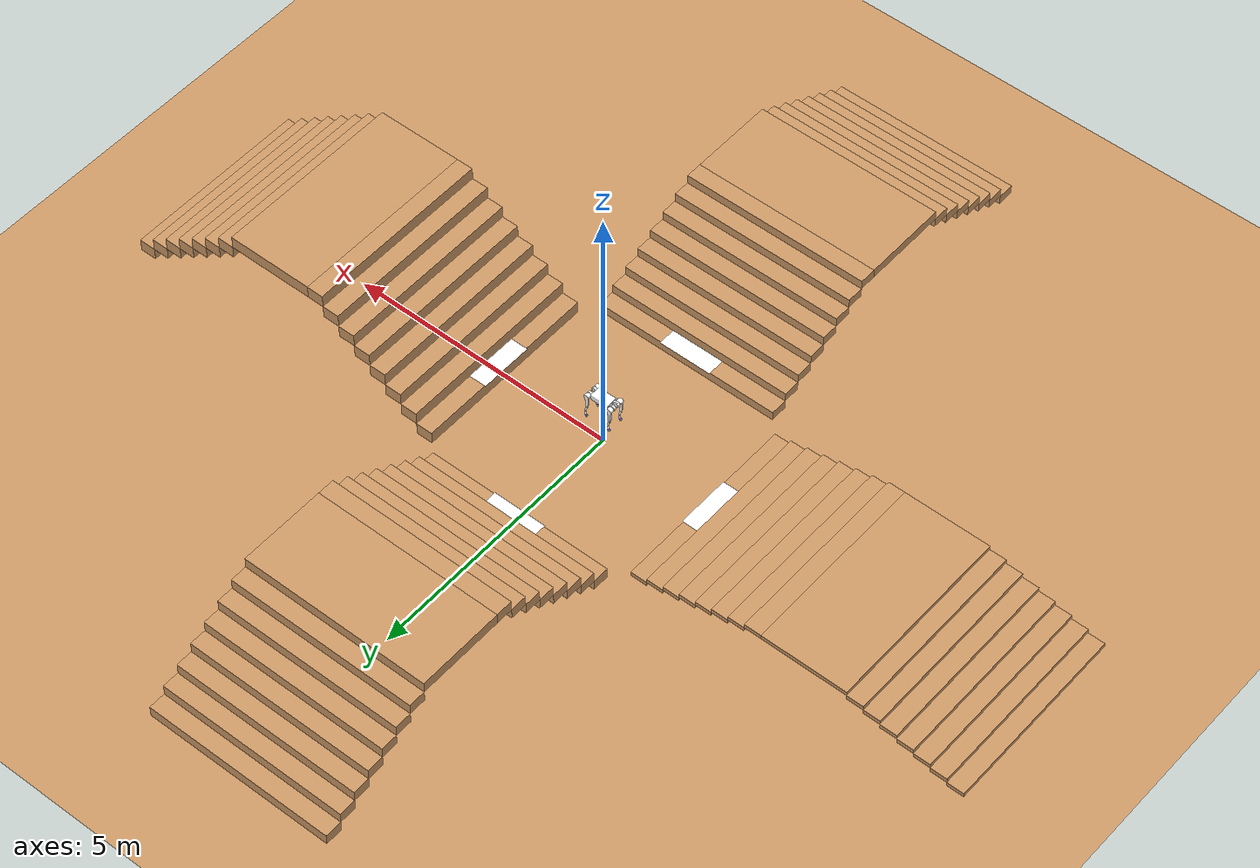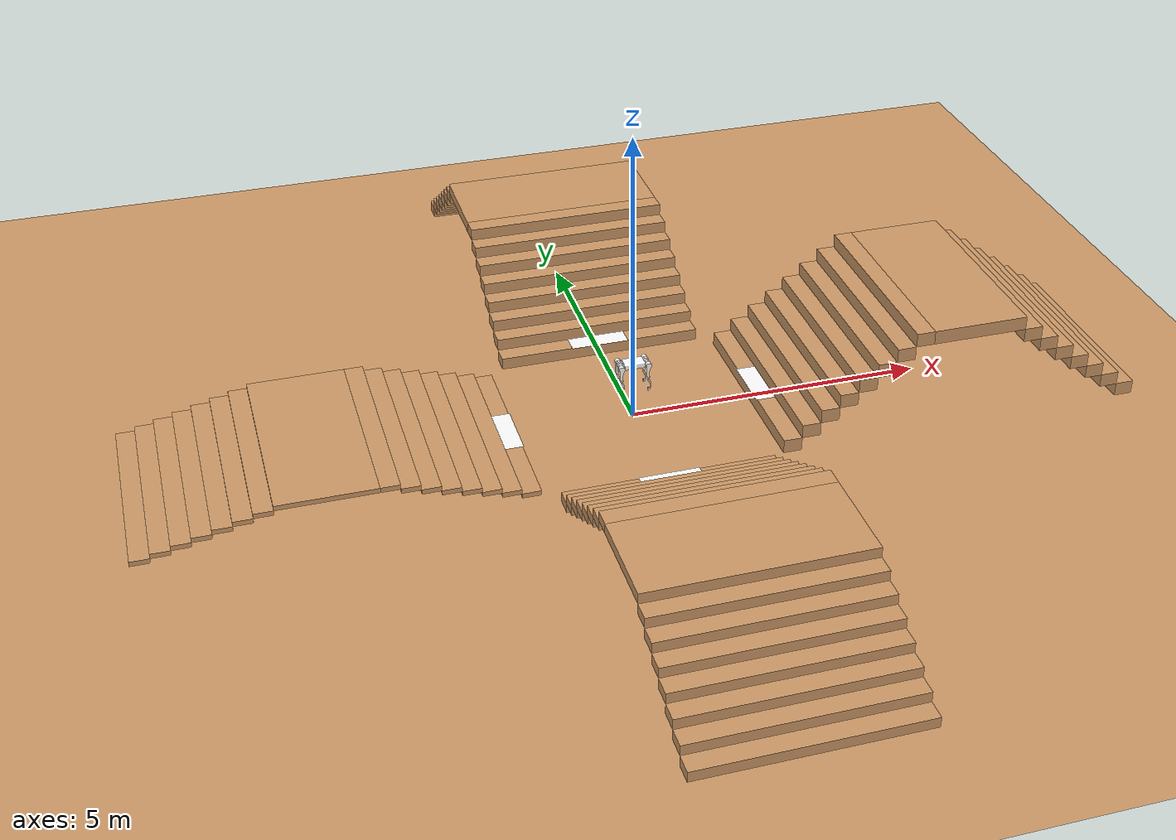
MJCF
<mujoco model="cross_stairs_1_4_7_10">
  <include file="mjmodel.xml"/>
  <!-- Terrain Type: cross_stairs, Level: 1_4_7_10, Cross Layout: Center Gap 2.0m. Arch step height: 0.0800 Arch step height: 0.2000 Arch step height: 0.2300 Arch step height: 0.1700 -->
  <statistic center="0 0 0.1" extent="0.8" />
  <visual>
    <headlight diffuse="0.6 0.6 0.6" ambient="0.3 0.3 0.3" specular="0 0 0" />
    <rgba haze="0.15 0.25 0.35 1" />
    <global azimuth="-130" elevation="-20" />
  </visual>
  <asset>
    <texture type="skybox" builtin="gradient" rgb1="0.3 0.5 0.7" rgb2="0 0 0" width="512" height="3072" />
    <texture type="2d" name="groundplane" builtin="checker" mark="edge" rgb1="0.2 0.3 0.4" rgb2="0.1 0.2 0.3" markrgb="0.8 0.8 0.8" width="300" height="300" />
    <material name="groundplane" texture="groundplane" texuniform="true" texrepeat="5 5" reflectance="0.0" />
    <texture name="tex_label_1" type="2d" file="../imgs/label_1.png" />
    <material name="mat_label_1" texture="tex_label_1" specular="0" shininess="0" emission="1" texrepeat="1 -1" rgba="1 1 1 1" />
    <texture name="tex_label_7" type="2d" file="../imgs/label_7.png" />
    <material name="mat_label_7" texture="tex_label_7" specular="0" shininess="0" emission="1" texrepeat="1 -1" rgba="1 1 1 1" />
    <texture name="tex_label_10" type="2d" file="../imgs/label_10.png" />
    <material name="mat_label_10" texture="tex_label_10" specular="0" shininess="0" emission="1" texrepeat="1 -1" rgba="1 1 1 1" />
    <texture name="tex_label_4" type="2d" file="../imgs/label_4.png" />
    <material name="mat_label_4" texture="tex_label_4" specular="0" shininess="0" emission="1" texrepeat="1 -1" rgba="1 1 1 1" />
  </asset>
  <worldbody>
    <light pos="0 0 1.5" dir="0 0 -1" directional="true" />
    <geom name="floor" size="0 0 0.05" type="plane" material="groundplane" />
    <geom pos="-2.155 1.8982025386783976e-17 0.04" type="box" size="0.155 1.75 0.04" quat="6.123233995736766e-17 0.0 0.0 1.0" />
    <geom pos="-2.465 5.694607616035192e-17 0.12" type="box" size="0.155 1.75 0.04" quat="6.123233995736766e-17 0.0 0.0 1.0" />
    <geom pos="-2.775 9.491012693391986e-17 0.2" type="box" size="0.155 1.75 0.04" quat="6.123233995736766e-17 0.0 0.0 1.0" />
    <geom pos="-3.085 1.328741777074878e-16 0.28" type="box" size="0.155 1.75 0.04" quat="6.123233995736766e-17 0.0 0.0 1.0" />
    <geom pos="-3.395 1.7083822848105578e-16 0.36000000000000004" type="box" size="0.155 1.75 0.04" quat="6.123233995736766e-17 0.0 0.0 1.0" />
    <geom pos="-3.705 2.0880227925462374e-16 0.44000000000000006" type="box" size="0.155 1.75 0.04" quat="6.123233995736766e-17 0.0 0.0 1.0" />
    <geom pos="-4.015000000000001 2.467663300281917e-16 0.52" type="box" size="0.155 1.75 0.04" quat="6.123233995736766e-17 0.0 0.0 1.0" />
    <geom pos="-4.325 2.8473038080175964e-16 0.6" type="box" size="0.155 1.75 0.04" quat="6.123233995736766e-17 0.0 0.0 1.0" />
    <geom pos="-5.28 4.016841501203319e-16 0.6" type="box" size="0.8 1.75 0.04" quat="6.123233995736766e-17 0.0 0.0 1.0" />
    <geom pos="-6.235 5.186379194389041e-16 0.52" type="box" size="0.155 1.75 0.04" quat="6.123233995736766e-17 0.0 0.0 1.0" />
    <geom pos="-6.545 5.56601970212472e-16 0.44" type="box" size="0.155 1.75 0.04" quat="6.123233995736766e-17 0.0 0.0 1.0" />
    <geom pos="-6.8549999999999995 5.945660209860399e-16 0.36" type="box" size="0.155 1.75 0.04" quat="6.123233995736766e-17 0.0 0.0 1.0" />
    <geom pos="-7.164999999999999 6.325300717596078e-16 0.27999999999999997" type="box" size="0.155 1.75 0.04" quat="6.123233995736766e-17 0.0 0.0 1.0" />
    <geom pos="-7.474999999999999 6.704941225331758e-16 0.19999999999999996" type="box" size="0.155 1.75 0.04" quat="6.123233995736766e-17 0.0 0.0 1.0" />
    <geom pos="-7.784999999999998 7.084581733067436e-16 0.11999999999999995" type="box" size="0.155 1.75 0.04" quat="6.123233995736766e-17 0.0 0.0 1.0" />
    <geom pos="-8.094999999999999 7.464222240803115e-16 0.03999999999999995" type="box" size="0.155 1.75 0.04" quat="6.123233995736766e-17 0.0 0.0 1.0" />
    <geom pos="-2.155 1.8982025386783976e-17 0.082" type="box" size="0.5 0.17532467532467533 0.0001" quat="0.7071067811865476 0.0 0.0 0.7071067811865476" contype="0" conaffinity="0" group="1" material="mat_label_1" rgba="1 1 1 1" />
    <geom pos="9.491012693391988e-18 2.155 0.1" type="box" size="0.155 1.75 0.1" quat="0.7071067811865476 0.0 0.0 0.7071067811865476" />
    <geom pos="2.847303808017596e-17 2.465 0.30000000000000004" type="box" size="0.155 1.75 0.1" quat="0.7071067811865476 0.0 0.0 0.7071067811865476" />
    <geom pos="4.745506346695993e-17 2.775 0.5" type="box" size="0.155 1.75 0.1" quat="0.7071067811865476 0.0 0.0 0.7071067811865476" />
    <geom pos="6.64370888537439e-17 3.085 0.7" type="box" size="0.155 1.75 0.1" quat="0.7071067811865476 0.0 0.0 0.7071067811865476" />
    <geom pos="8.541911424052789e-17 3.395 0.8999999999999999" type="box" size="0.155 1.75 0.1" quat="0.7071067811865476 0.0 0.0 0.7071067811865476" />
    <geom pos="1.0440113962731187e-16 3.705 1.0999999999999999" type="box" size="0.155 1.75 0.1" quat="0.7071067811865476 0.0 0.0 0.7071067811865476" />
    <geom pos="1.2338316501409585e-16 4.015000000000001 1.2999999999999998" type="box" size="0.155 1.75 0.1" quat="0.7071067811865476 0.0 0.0 0.7071067811865476" />
    <geom pos="1.4236519040087982e-16 4.325 1.4999999999999998" type="box" size="0.155 1.75 0.1" quat="0.7071067811865476 0.0 0.0 0.7071067811865476" />
    <geom pos="2.0084207506016595e-16 5.28 1.4999999999999998" type="box" size="0.8 1.75 0.1" quat="0.7071067811865476 0.0 0.0 0.7071067811865476" />
    <geom pos="2.5931895971945205e-16 6.235 1.2999999999999998" type="box" size="0.155 1.75 0.1" quat="0.7071067811865476 0.0 0.0 0.7071067811865476" />
    <geom pos="2.78300985106236e-16 6.545 1.0999999999999999" type="box" size="0.155 1.75 0.1" quat="0.7071067811865476 0.0 0.0 0.7071067811865476" />
    <geom pos="2.9728301049301994e-16 6.8549999999999995 0.8999999999999999" type="box" size="0.155 1.75 0.1" quat="0.7071067811865476 0.0 0.0 0.7071067811865476" />
    <geom pos="3.162650358798039e-16 7.164999999999999 0.7" type="box" size="0.155 1.75 0.1" quat="0.7071067811865476 0.0 0.0 0.7071067811865476" />
    <geom pos="3.352470612665879e-16 7.474999999999999 0.49999999999999994" type="box" size="0.155 1.75 0.1" quat="0.7071067811865476 0.0 0.0 0.7071067811865476" />
    <geom pos="3.542290866533718e-16 7.784999999999998 0.29999999999999993" type="box" size="0.155 1.75 0.1" quat="0.7071067811865476 0.0 0.0 0.7071067811865476" />
    <geom pos="3.7321111204015577e-16 8.094999999999999 0.09999999999999992" type="box" size="0.155 1.75 0.1" quat="0.7071067811865476 0.0 0.0 0.7071067811865476" />
    <geom pos="9.491012693391988e-18 2.155 0.202" type="box" size="0.5 0.17532467532467533 0.0001" quat="1.0 0.0 0.0 0.0" contype="0" conaffinity="0" group="1" material="mat_label_7" rgba="1 1 1 1" />
    <geom pos="2.155 0.0 0.115" type="box" size="0.155 1.75 0.115" quat="1.0 0.0 0.0 0.0" />
    <geom pos="2.465 0.0 0.34500000000000003" type="box" size="0.155 1.75 0.115" quat="1.0 0.0 0.0 0.0" />
    <geom pos="2.775 0.0 0.5750000000000001" type="box" size="0.155 1.75 0.115" quat="1.0 0.0 0.0 0.0" />
    <geom pos="3.085 0.0 0.805" type="box" size="0.155 1.75 0.115" quat="1.0 0.0 0.0 0.0" />
    <geom pos="3.395 0.0 1.0350000000000001" type="box" size="0.155 1.75 0.115" quat="1.0 0.0 0.0 0.0" />
    <geom pos="3.705 0.0 1.2650000000000001" type="box" size="0.155 1.75 0.115" quat="1.0 0.0 0.0 0.0" />
    <geom pos="4.015000000000001 0.0 1.495" type="box" size="0.155 1.75 0.115" quat="1.0 0.0 0.0 0.0" />
    <geom pos="4.325 0.0 1.725" type="box" size="0.155 1.75 0.115" quat="1.0 0.0 0.0 0.0" />
    <geom pos="5.28 0.0 1.725" type="box" size="0.8 1.75 0.115" quat="1.0 0.0 0.0 0.0" />
    <geom pos="6.235 0.0 1.495" type="box" size="0.155 1.75 0.115" quat="1.0 0.0 0.0 0.0" />
    <geom pos="6.545 0.0 1.2650000000000001" type="box" size="0.155 1.75 0.115" quat="1.0 0.0 0.0 0.0" />
    <geom pos="6.8549999999999995 0.0 1.0350000000000001" type="box" size="0.155 1.75 0.115" quat="1.0 0.0 0.0 0.0" />
    <geom pos="7.164999999999999 0.0 0.8050000000000002" type="box" size="0.155 1.75 0.115" quat="1.0 0.0 0.0 0.0" />
    <geom pos="7.474999999999999 0.0 0.5750000000000002" type="box" size="0.155 1.75 0.115" quat="1.0 0.0 0.0 0.0" />
    <geom pos="7.784999999999998 0.0 0.3450000000000002" type="box" size="0.155 1.75 0.115" quat="1.0 0.0 0.0 0.0" />
    <geom pos="8.094999999999999 0.0 0.11500000000000019" type="box" size="0.155 1.75 0.115" quat="1.0 0.0 0.0 0.0" />
    <geom pos="2.155 0.0 0.232" type="box" size="0.5 0.17532467532467533 0.0001" quat="0.7071067811865476 0.0 0.0 -0.7071067811865476" contype="0" conaffinity="0" group="1" material="mat_label_10" rgba="1 1 1 1" />
    <geom pos="9.491012693391988e-18 -2.155 0.08499999999999999" type="box" size="0.155 1.75 0.08499999999999999" quat="0.7071067811865476 0.0 0.0 -0.7071067811865476" />
    <geom pos="2.847303808017596e-17 -2.465 0.255" type="box" size="0.155 1.75 0.08499999999999999" quat="0.7071067811865476 0.0 0.0 -0.7071067811865476" />
    <geom pos="4.745506346695993e-17 -2.775 0.425" type="box" size="0.155 1.75 0.08499999999999999" quat="0.7071067811865476 0.0 0.0 -0.7071067811865476" />
    <geom pos="6.64370888537439e-17 -3.085 0.595" type="box" size="0.155 1.75 0.08499999999999999" quat="0.7071067811865476 0.0 0.0 -0.7071067811865476" />
    <geom pos="8.541911424052789e-17 -3.395 0.7649999999999999" type="box" size="0.155 1.75 0.08499999999999999" quat="0.7071067811865476 0.0 0.0 -0.7071067811865476" />
    <geom pos="1.0440113962731187e-16 -3.705 0.9349999999999998" type="box" size="0.155 1.75 0.08499999999999999" quat="0.7071067811865476 0.0 0.0 -0.7071067811865476" />
    <geom pos="1.2338316501409585e-16 -4.015000000000001 1.1049999999999998" type="box" size="0.155 1.75 0.08499999999999999" quat="0.7071067811865476 0.0 0.0 -0.7071067811865476" />
    <geom pos="1.4236519040087982e-16 -4.325 1.2749999999999997" type="box" size="0.155 1.75 0.08499999999999999" quat="0.7071067811865476 0.0 0.0 -0.7071067811865476" />
    <geom pos="2.0084207506016595e-16 -5.28 1.2749999999999997" type="box" size="0.8 1.75 0.08499999999999999" quat="0.7071067811865476 0.0 0.0 -0.7071067811865476" />
    <geom pos="2.5931895971945205e-16 -6.235 1.1049999999999998" type="box" size="0.155 1.75 0.08499999999999999" quat="0.7071067811865476 0.0 0.0 -0.7071067811865476" />
    <geom pos="2.78300985106236e-16 -6.545 0.9349999999999998" type="box" size="0.155 1.75 0.08499999999999999" quat="0.7071067811865476 0.0 0.0 -0.7071067811865476" />
    <geom pos="2.9728301049301994e-16 -6.8549999999999995 0.7649999999999999" type="box" size="0.155 1.75 0.08499999999999999" quat="0.7071067811865476 0.0 0.0 -0.7071067811865476" />
    <geom pos="3.162650358798039e-16 -7.164999999999999 0.595" type="box" size="0.155 1.75 0.08499999999999999" quat="0.7071067811865476 0.0 0.0 -0.7071067811865476" />
    <geom pos="3.352470612665879e-16 -7.474999999999999 0.425" type="box" size="0.155 1.75 0.08499999999999999" quat="0.7071067811865476 0.0 0.0 -0.7071067811865476" />
    <geom pos="3.542290866533718e-16 -7.784999999999998 0.255" type="box" size="0.155 1.75 0.08499999999999999" quat="0.7071067811865476 0.0 0.0 -0.7071067811865476" />
    <geom pos="3.7321111204015577e-16 -8.094999999999999 0.08500000000000002" type="box" size="0.155 1.75 0.08499999999999999" quat="0.7071067811865476 0.0 0.0 -0.7071067811865476" />
    <geom pos="9.491012693391988e-18 -2.155 0.172" type="box" size="0.5 0.17532467532467533 0.0001" quat="6.123233995736766e-17 0.0 0.0 -1.0" contype="0" conaffinity="0" group="1" material="mat_label_4" rgba="1 1 1 1" />
  </worldbody>
</mujoco>

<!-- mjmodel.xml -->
<mujoco model="QXHZZ_quadruped">
  <compiler angle="radian" meshdir="../meshes/"/>
  <!-- 仿真参数 -->
  <option timestep="0.002" gravity="0 0 -9.81" iterations="50" tolerance="1e-10" solver="Newton" jacobian="dense" cone="pyramidal"/>
  <!-- 默认参数？？ -->
  <default>
    <joint limited="true" armature="0.01" damping="0.1" frictionloss="0.01"/>
    <geom contype="0" conaffinity="0" condim="3" friction="1.0 0.005 0.0001" rgba="0.8 0.6 0.4 1"/>
    <motor ctrllimited="true" ctrlrange="-48 48"/>
  </default>
<!-- 资产文件 -->
  <asset>
    <mesh name="base_link" file="base_link.STL"/>
    <mesh name="shenzi" file="shenzi.STL"/>
    <mesh name="yq1" file="yq1.STL"/>
    <mesh name="zh2" file="zh2.STL"/>
    <mesh name="zh3" file="zh3.STL"/>
    <mesh name="zq1" file="zq1.STL"/>
    <mesh name="yh2" file="yh2.STL"/>
    <mesh name="yh3" file="yh3.STL"/>
    <mesh name="zh1" file="zh1.STL"/>
    <mesh name="yh1" file="yh1.STL"/>
  </asset>

  <worldbody>
    <!-- Ground plane -->

    <!-- Floating base trunk -->
    <body name="trunk" pos="0 0 1.">
      <!-- Free joint for floating base -->
      <joint name="root_joint" type="free"/>

      <!-- Trunk geometry -->
      <geom type="mesh" contype="0" conaffinity="0" group="1" density="0" rgba="0.77647 0.75686 0.73725 1" mesh="base_link"/>
      <geom name="trunk_collision" type="mesh" rgba="0.77647 0.75686 0.73725 1" mesh="base_link" contype="1" conaffinity="1"/>
      <geom type="mesh" contype="0" conaffinity="0" group="1" density="0" rgba="1 1 1 1" mesh="shenzi"/>
      <geom type="mesh" rgba="1 1 1 1" mesh="shenzi" contype="1" conaffinity="1"/>

      <!-- IMU site for sensors -->
      <site name="imu_site" pos="0 0 0" size="0.01"/>

      <!-- Inertial properties for trunk (adjust mass as needed) -->
      <inertial pos="0 0 0" mass="8.0" diaginertia="0.1 0.1 0.05"/>

      <!-- Front Left Leg -->
      <body name="FL_hip" pos="0.22599 0.05 0">
        <inertial pos="-0.040294 -0.0010631 6.4131e-06" quat="0.503168 0.503168 0.496812 0.496812" mass="0.80054" diaginertia="0.000893159 0.000630935 0.000567334"/>
        <joint name="FL_hip_joint" pos="0 0 0" axis="1 0 0" range="-1.5708 1.5708"/>
        <geom type="mesh" contype="1" conaffinity="0" group="1" density="0" rgba="1 1 1 1" mesh="yq1"/>
        <geom type="mesh" rgba="1 1 1 1" mesh="yq1"/>
        <body name="FL_thigh" pos="0 0.088241 0">
          <inertial pos="0.0030535 -0.015391 -0.04077" quat="0.999453 0 -0.0330766 0" mass="1.22" diaginertia="0.00873952 0.00842409 0.00134995"/>
          <joint name="FL_thigh_joint" pos="0 0 0" axis="0 1 0" range="-1.5708 3.14159"/>
          <geom type="mesh" contype="1" conaffinity="0" group="1" density="0" rgba="1 1 1 1" mesh="zh2"/>
          <geom type="mesh" rgba="1 1 1 1" mesh="zh2"/>
          <body name="FL_calf" pos="0 0 -0.22023">
            <inertial pos="-0.00793244 -9.51164e-07 -0.134128" quat="0.706936 0.0155267 0.0155267 0.706936" mass="0.59021" diaginertia="0.0048701 0.00483361 7.50726e-05"/>
            <joint name="FL_calf_joint" pos="0 0 0" axis="0 1 0" range="-2.70526 -0.523599"/>
            <geom type="mesh" contype="1" conaffinity="0" group="1" density="0" rgba="1 1 1 1" mesh="zh3"/>
            <geom type="mesh" rgba="1 1 1 1" mesh="zh3"/>
            <!-- Foot contact sphere -->
            <geom name="FL_foot" type="sphere" size="0.02" pos="0 0 -0.22" rgba="0.3 0.3 0.8 1" contype="1" conaffinity="1" friction="1.5 0.005 0.0001"/>
          </body>
        </body>
      </body>

      <!-- Front Right Leg -->
      <body name="FR_hip" pos="0.22599 -0.05 0">
        <inertial pos="-0.040294 0.0010631 6.4131e-06" quat="0.503168 0.503168 0.496812 0.496812" mass="0.80054" diaginertia="0.000893159 0.000630935 0.000567334"/>
        <joint name="FR_hip_joint" pos="0 0 0" axis="1 0 0" range="-1.5708 1.5708"/>
        <geom type="mesh" contype="1" conaffinity="0" group="1" density="0" rgba="1 1 1 1" mesh="zq1"/>
        <geom type="mesh" rgba="1 1 1 1" mesh="zq1"/>
        <body name="FR_thigh" pos="0 -0.088241 0">
          <inertial pos="0.0030535 0.015391 -0.04077" quat="0.999453 0 -0.0330766 0" mass="1.22" diaginertia="0.00873952 0.00842409 0.00134995"/>
          <joint name="FR_thigh_joint" pos="0 0 0" axis="0 1 0" range="-1.5708 3.14159"/>
          <geom type="mesh" contype="1" conaffinity="0" group="1" density="0" rgba="1 1 1 1" mesh="yh2"/>
          <geom type="mesh" rgba="1 1 1 1" mesh="yh2"/>
          <body name="FR_calf" pos="0 0 -0.22023">
            <inertial pos="-0.00793244 9.61495e-07 -0.134128" quat="0.706936 0.0155267 0.0155267 0.706936" mass="0.59021" diaginertia="0.0048701 0.00483361 7.50726e-05"/>
            <joint name="FR_calf_joint" pos="0 0 0" axis="0 1 0" range="-2.70526 -0.523599"/>
            <geom type="mesh" contype="1" conaffinity="0" group="1" density="0" rgba="1 1 1 1" mesh="yh3"/>
            <geom type="mesh" rgba="1 1 1 1" mesh="yh3"/>
            <!-- Foot contact sphere -->
            <geom name="FR_foot" type="sphere" size="0.02" pos="0 0 -0.22" rgba="0.3 0.3 0.8 1" contype="1" conaffinity="1" friction="1.5 0.005 0.0001"/>
          </body>
        </body>
      </body>

      <!-- Rear Left Leg -->
      <body name="RL_hip" pos="-0.22599 0.05 0">
        <inertial pos="0.040294 -0.0010631 6.4131e-06" quat="0.503168 0.503168 0.496812 0.496812" mass="0.80054" diaginertia="0.000893159 0.000630935 0.000567334"/>
        <joint name="RL_hip_joint" pos="0 0 0" axis="1 0 0" range="-1.5708 1.5708"/>
        <geom type="mesh" contype="1" conaffinity="0" group="1" density="0" rgba="1 1 1 1" mesh="zh1"/>
        <geom type="mesh" rgba="1 1 1 1" mesh="zh1"/>
        <body name="RL_thigh" pos="0 0.088241 0">
          <inertial pos="-0.0030535 -0.015391 -0.04077" quat="0.999453 0 -0.0330766 0" mass="1.22" diaginertia="0.00873952 0.00842409 0.00134995"/>
          <joint name="RL_thigh_joint" pos="0 0 0" axis="0 1 0" range="-1.5708 3.14159"/>
          <geom type="mesh" contype="1" conaffinity="0" group="1" density="0" rgba="1 1 1 1" mesh="zh2"/>
          <geom type="mesh" rgba="1 1 1 1" mesh="zh2"/>
          <body name="RL_calf" pos="0 0 -0.22023">
            <inertial pos="0.00793244 -9.61495e-07 -0.134128" quat="0.706757 0.0222331 0.0222331 0.706757" mass="0.59021" diaginertia="0.0048701 0.00484331 6.53701e-05"/>
            <joint name="RL_calf_joint" pos="0 0 0" axis="0 1 0" range="-2.70526 -0.523599"/>
            <geom type="mesh" contype="1" conaffinity="0" group="1" density="0" rgba="1 1 1 1" mesh="zh3"/>
            <geom type="mesh" rgba="1 1 1 1" mesh="zh3"/>
            <!-- Foot contact sphere -->
            <geom name="RL_foot" type="sphere" size="0.02" pos="0 0 -0.22" rgba="0.3 0.3 0.8 1" contype="1" conaffinity="1" friction="1.5 0.005 0.0001"/>
          </body>
        </body>
      </body>

      <!-- Rear Right Leg -->
      <body name="RR_hip" pos="-0.22599 -0.05 0">
        <inertial pos="0.040294 0.0010631 6.4131e-06" quat="0.503168 0.503168 0.496812 0.496812" mass="0.80054" diaginertia="0.000893159 0.000630935 0.000567334"/>
        <joint name="RR_hip_joint" pos="0 0 0" axis="1 0 0" range="-1.5708 1.5708"/>
        <geom type="mesh" contype="1" conaffinity="0" group="1" density="0" rgba="1 1 1 1" mesh="yh1"/>
        <geom type="mesh" rgba="1 1 1 1" mesh="yh1"/>
        <body name="RR_thigh" pos="0 -0.088241 0">
          <inertial pos="-0.0030535 0.015391 -0.04077" quat="0.999453 0 -0.0330766 0" mass="1.22" diaginertia="0.00873952 0.00842409 0.00134995"/>
          <joint name="RR_thigh_joint" pos="0 0 0" axis="0 1 0" range="-1.5708 3.14159"/>
          <geom type="mesh" contype="1" conaffinity="0" group="1" density="0" rgba="1 1 1 1" mesh="yh2"/>
          <geom type="mesh" rgba="1 1 1 1" mesh="yh2"/>
          <body name="RR_calf" pos="0 0 -0.22023">
            <inertial pos="0.00793244 9.51164e-07 -0.134128" quat="0.706757 0.0222331 0.0222331 0.706757" mass="0.59021" diaginertia="0.0048701 0.00484331 6.53701e-05"/>
            <joint name="RR_calf_joint" pos="0 0 0" axis="0 1 0" range="-2.70526 -0.523599"/>
            <geom type="mesh" contype="1" conaffinity="0" group="1" density="0" rgba="1 1 1 1" mesh="yh3"/>
            <geom type="mesh" rgba="1 1 1 1" mesh="yh3"/>
            <!-- Foot contact sphere -->
            <geom name="RR_foot" type="sphere" size="0.02" pos="0 0 -0.22" rgba="0.3 0.3 0.8 1" contype="1" conaffinity="1" friction="1.5 0.005 0.0001"/>
          </body>
        </body>
      </body>
    </body>
  </worldbody>

  <actuator>
    <motor name="FL_hip_motor" joint="FL_hip_joint" ctrlrange="-48 48" ctrllimited="true"/>
    <motor name="FL_thigh_motor" joint="FL_thigh_joint" ctrlrange="-48 48" ctrllimited="true"/>
    <motor name="FL_calf_motor" joint="FL_calf_joint" ctrlrange="-48 48" ctrllimited="true"/>
    <motor name="FR_hip_motor" joint="FR_hip_joint" ctrlrange="-48 48" ctrllimited="true"/>
    <motor name="FR_thigh_motor" joint="FR_thigh_joint" ctrlrange="-48 48" ctrllimited="true"/>
    <motor name="FR_calf_motor" joint="FR_calf_joint" ctrlrange="-48 48" ctrllimited="true"/>
    <motor name="RL_hip_motor" joint="RL_hip_joint" ctrlrange="-48 48" ctrllimited="true"/>
    <motor name="RL_thigh_motor" joint="RL_thigh_joint" ctrlrange="-48 48" ctrllimited="true"/>
    <motor name="RL_calf_motor" joint="RL_calf_joint" ctrlrange="-48 48" ctrllimited="true"/>
    <motor name="RR_hip_motor" joint="RR_hip_joint" ctrlrange="-48 48" ctrllimited="true"/>
    <motor name="RR_thigh_motor" joint="RR_thigh_joint" ctrlrange="-48 48" ctrllimited="true"/>
    <motor name="RR_calf_motor" joint="RR_calf_joint" ctrlrange="-48 48" ctrllimited="true"/>
  </actuator>

  <!-- Sensors -->
  <sensor>
    <accelerometer name="imu_accel" site="imu_site"/>
    <gyro name="imu_gyro" site="imu_site"/>
  </sensor>
</mujoco>
